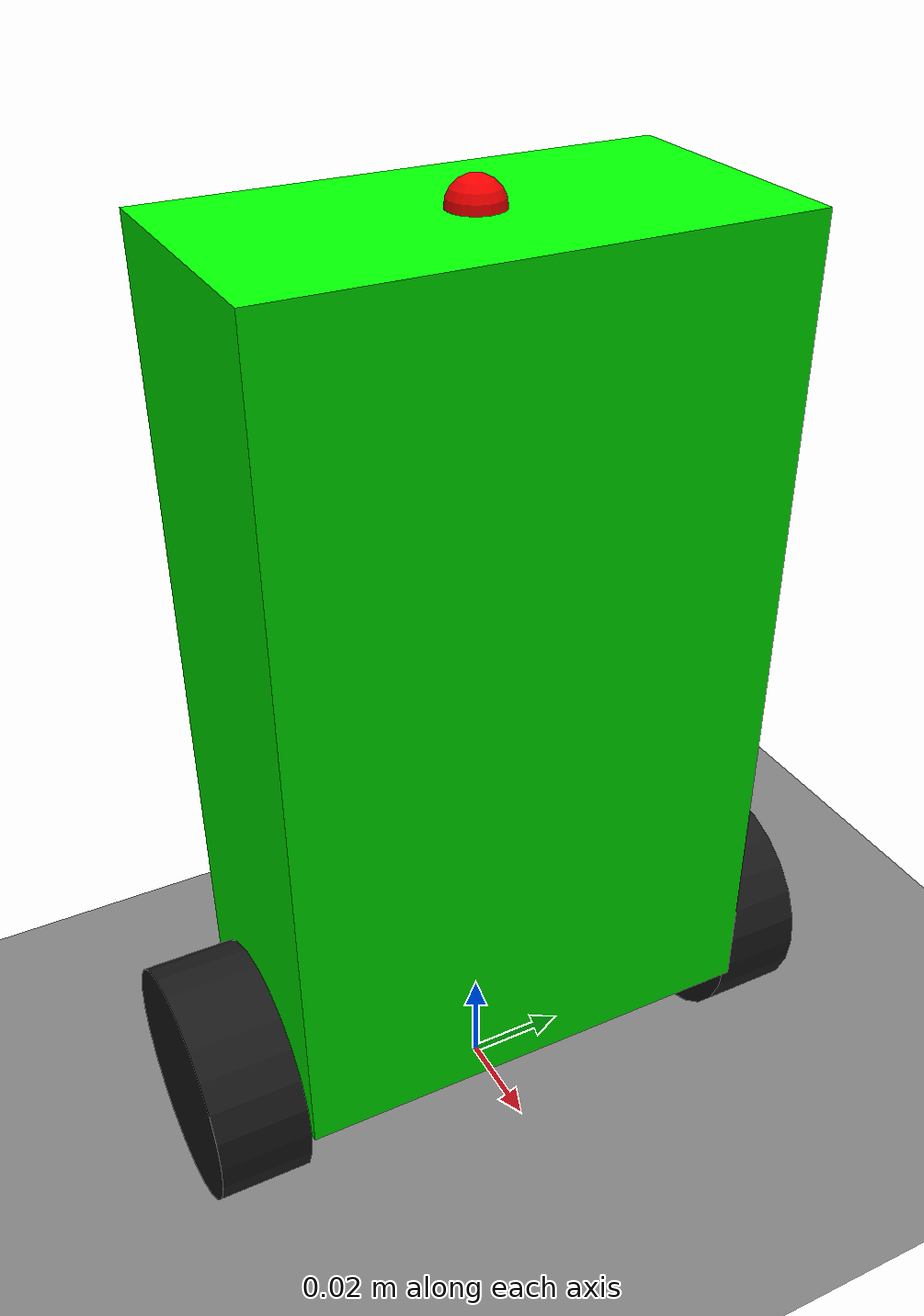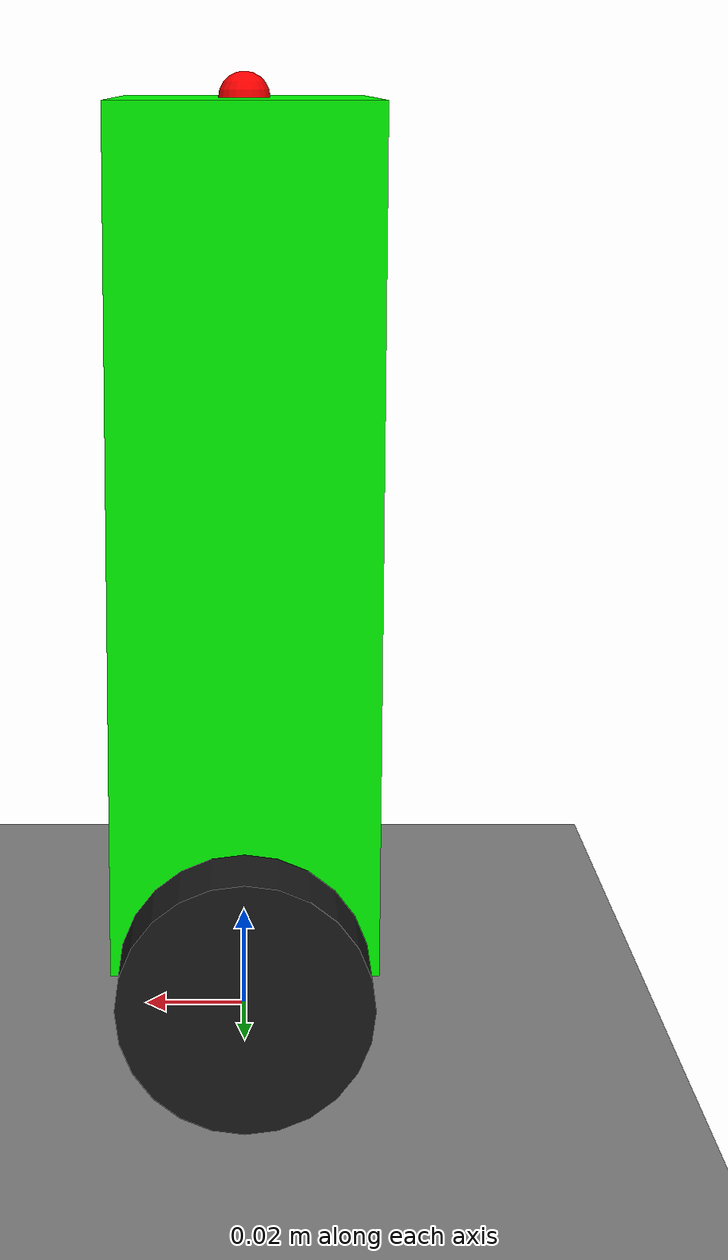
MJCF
<?xml version="1.0" encoding="UTF-8"?>

<mujoco model="balancing_robot">
      <option timestep="0.005" gravity="0 0 -9.81" integrator="implicitfast"/>
      <statistic center="0 0 0.1" extent="0.25"/>

      <worldbody>
        <light pos="0 0 2"/>
        <geom name="floor" type="plane" size="5 5 0.1"/>

        <!-- Axle at wheel radius (4.7cm diameter) so the frame sits at half wheel height -->
        <body name="chassis" pos="0 0 0.0235">
            <freejoint name="root"/>
            <!-- 7 cm vanaf de wielas, 0.68 kg. Inertia is a box estimate about the axle. -->
            <inertial pos="0 0 0.07" mass="0.68" diaginertia="0.00529 0.00492 0.00065"/>

            <!-- 16cm tall; bottom face on the axle (half wheel height) -->
            <geom type="box"
                  size="0.025 0.0475 0.08"
                  pos="0 0 0.08"
                  rgba="0 1.0 0 1.0"
                  contype="0"
                  conaffinity="0"/>

            <!-- IMU on top center of the chassis (top of 16cm box at z=0.16) -->
            <site name="imu_site" pos="0 0 0.16" size="0.005" rgba="1 0 0 1"/>

            <body name="left_wheel" pos="0 0.0565 0">
                <joint name="left_wheel_joint" axis="0 1 0" type="hinge"
                       damping="0.0002" frictionloss="0.002" armature="6e-5"/>
                <geom name="wheel_left_geom" type="cylinder" size="0.0235 0.009"
                      quat="0.707 0.707 0 0" rgba="0.1 0.1 0.1 1.0"
                      friction="1.5 0.005 0.0001"/>
                <inertial pos="0 0 0"
                          mass="0.017"
                          diaginertia="2.806e-6 4.696e-6 2.806e-6"/>
            </body>

            <body name="right_wheel" pos="0 -0.0565 0">
                <joint name="right_wheel_joint" axis="0 1 0" type="hinge"
                       damping="0.0002" frictionloss="0.002" armature="6e-5"/>
                <geom name="wheel_right_geom" type="cylinder" size="0.0235 0.009"
                      quat="0.707 0.707 0 0" rgba="0.1 0.1 0.1 1.0"
                      friction="1.5 0.005 0.0001"/>
                <inertial pos="0 0 0"
                          mass="0.017"
                          diaginertia="2.806e-6 4.696e-6 2.806e-6"/>
            </body>
        </body>

       </worldbody>

      <!-- ctrl in [-1, 1] maps to stall torque 0.098 N.m (1.0 kg.cm) -->
      <actuator>
        <motor name="left_motor" joint="left_wheel_joint" gear="0.098" ctrlrange="-1 1"/>
        <motor name="right_motor" joint="right_wheel_joint" gear="0.098" ctrlrange="-1 1"/>
      </actuator>

    <sensor>
        <accelerometer name="imu_accel" site="imu_site"/>
        <gyro name="imu_gyro" site="imu_site"/>
        <framequat name="imu_orientation" objtype="site" objname="imu_site"/>
        <jointpos name="left_wheel_pos" joint="left_wheel_joint"/>
        <jointpos name="right_wheel_pos" joint="right_wheel_joint"/>
        <jointvel name="left_wheel_vel" joint="left_wheel_joint"/>
        <jointvel name="right_wheel_vel" joint="right_wheel_joint"/>
    </sensor>
</mujoco>
